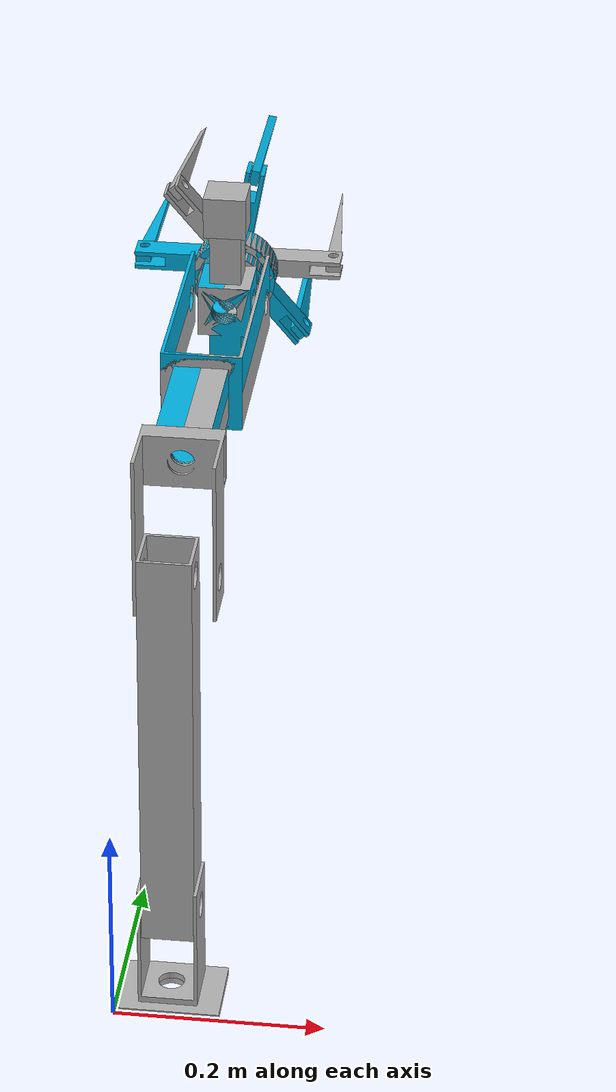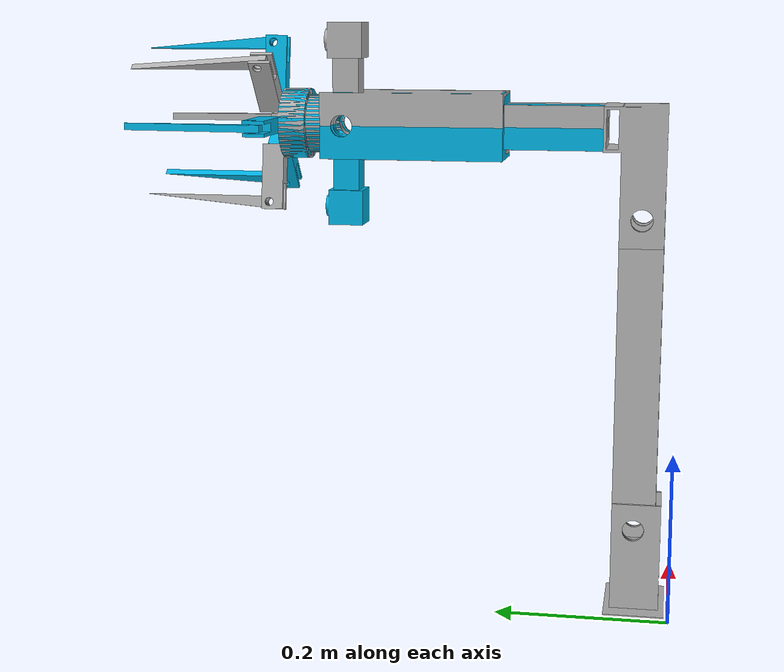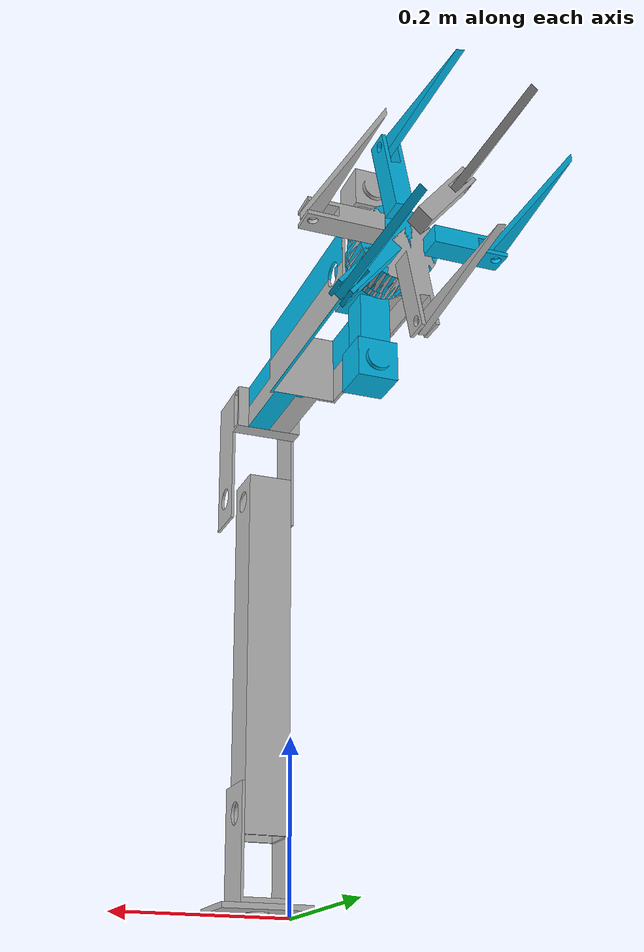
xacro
<?xml version="1.0" ?>
<robot name="URDF" xmlns:xacro="http://www.ros.org/wiki/xacro">

<xacro:include filename="$(find rover)/rover/simulation/urdfs/Arm_CIRC_2024/materials.xacro" />
<link name="base_link">
  <inertial>
    <origin xyz="0.049999999999908465 0.03732491617294113 0.003125" rpy="0 0 0"/>
    <mass value="0.3438852516301944"/>
    <inertia ixx="0.000173" iyy="0.000307" izz="0.000477" ixy="0.0" iyz="0.0" ixz="0.0"/>
  </inertial>
  <visual>
    <origin xyz="0 0 0" rpy="0 0 0"/>
    <geometry>
      <mesh filename="package://rover/rover/simulation/meshes/Arm_CIRC_2024/base_link.stl" scale="0.001 0.001 0.001"/>
    </geometry>
    <material name="silver"/>
  </visual>
  <collision>
    <origin xyz="0 0 0" rpy="0 0 0"/>
    <geometry>
      <mesh filename="package://rover/rover/simulation/meshes/Arm_CIRC_2024/base_link.stl" scale="0.001 0.001 0.001"/>
    </geometry>
  </collision>
</link>

<!-- Target Position Arm -->

<link name="link_2">
  <inertial>
    <origin xyz="0.025 -3.469446951953614e-17 0.18000000000000033" rpy="0 0 0"/>
    <mass value="1.8376728470103898"/>
    <inertia ixx="0.025547" iyy="0.025522" izz="0.001359" ixy="-0.0" iyz="0.0" ixz="0.0"/>
  </inertial>
  <visual>
    <origin xyz="-0.025 -0.043125 -0.10125" rpy="0 0 0"/>
    <geometry>
      <mesh filename="package://rover/rover/simulation/meshes/Arm_CIRC_2024/link_2_1.stl" scale="0.001 0.001 0.001"/>
    </geometry>
    <material name="silver"/>
  </visual>
  <collision>
    <origin xyz="-0.025 -0.043125 -0.10125" rpy="0 0 0"/>
    <geometry>
      <mesh filename="package://rover/rover/simulation/meshes/Arm_CIRC_2024/link_2_1.stl" scale="0.001 0.001 0.001"/>
    </geometry>
  </collision>
</link>

<link name="link_3">
  <inertial>
    <origin xyz="0.03437499999999987 -0.06837766852843247 0.012917814574353537" rpy="0 0 0"/>
    <mass value="0.5703271438853911"/>
    <inertia ixx="0.001379" iyy="0.000828" izz="0.001699" ixy="0.0" iyz="0.000233" ixz="0.0"/>
  </inertial>
  <visual>
    <origin xyz="-0.025 -0.043125 -0.46125" rpy="0 0 0"/>
    <geometry>
      <mesh filename="package://rover/rover/simulation/meshes/Arm_CIRC_2024/link_3_1.stl" scale="0.001 0.001 0.001"/>
    </geometry>
    <material name="silver"/>
  </visual>
  <collision>
    <origin xyz="-0.025 -0.043125 -0.46125" rpy="0 0 0"/>
    <geometry>
      <mesh filename="package://rover/rover/simulation/meshes/Arm_CIRC_2024/link_3_1.stl" scale="0.001 0.001 0.001"/>
    </geometry>
  </collision>
</link>

<link name="link_4">
  <inertial>
    <origin xyz="-5.140400912143073e-05 1.5265566588595902e-16 0.14186043457020492" rpy="0 0 0"/>
    <mass value="1.4205958730202999"/>
    <inertia ixx="0.012764" iyy="0.012172" izz="0.001822" ixy="0.0" iyz="0.0" ixz="-6e-06"/>
  </inertial>
  <visual>
    <origin xyz="-0.059375 0.056875 -0.50625" rpy="0 0 0"/>
    <geometry>
      <mesh filename="package://rover/rover/simulation/meshes/Arm_CIRC_2024/link_4_1.stl" scale="0.001 0.001 0.001"/>
    </geometry>
    <material name="silver"/>
  </visual>
  <collision>
    <origin xyz="-0.059375 0.056875 -0.50625" rpy="0 0 0"/>
    <geometry>
      <mesh filename="package://rover/rover/simulation/meshes/Arm_CIRC_2024/link_4_1.stl" scale="0.001 0.001 0.001"/>
    </geometry>
  </collision>
</link>

<link name="link_5">
  <inertial>
    <origin xyz="-0.024457508265359702 0.06037500000000042 -0.00023164099942307725" rpy="0 0 0"/>
    <mass value="1.03093485941646"/>
    <inertia ixx="0.000373" iyy="0.001033" izz="0.001033" ixy="-0.0" iyz="0.0" ixz="-8e-06"/>
  </inertial>
  <visual>
    <origin xyz="-0.0667 0.11725 -0.80125" rpy="0 0 0"/>
    <geometry>
      <mesh filename="package://rover/rover/simulation/meshes/Arm_CIRC_2024/link_5_1.stl" scale="0.001 0.001 0.001"/>
    </geometry>
    <material name="silver"/>
  </visual>
  <collision>
    <origin xyz="-0.0667 0.11725 -0.80125" rpy="0 0 0"/>
    <geometry>
      <mesh filename="package://rover/rover/simulation/meshes/Arm_CIRC_2024/link_5_1.stl" scale="0.001 0.001 0.001"/>
    </geometry>
  </collision>
</link>

<link name="link_1">
  <inertial>
    <origin xyz="-7.179673522372809e-14 -0.00017173384764001404 0.04577852526730277" rpy="0 0 0"/>
    <mass value="0.4382416946666404"/>
    <inertia ixx="0.000842" iyy="0.000973" izz="0.000383" ixy="0.0" iyz="4e-06" ixz="-0.0"/>
  </inertial>
  <visual>
    <origin xyz="-0.05 -0.04 -0.00625" rpy="0 0 0"/>
    <geometry>
      <mesh filename="package://rover/rover/simulation/meshes/Arm_CIRC_2024/link_1_1.stl" scale="0.001 0.001 0.001"/>
    </geometry>
    <material name="silver"/>
  </visual>
  <collision>
    <origin xyz="-0.05 -0.04 -0.00625" rpy="0 0 0"/>
    <geometry>
      <mesh filename="package://rover/rover/simulation/meshes/Arm_CIRC_2024/link_1_1.stl" scale="0.001 0.001 0.001"/>
    </geometry>
  </collision>
</link>

<link name="link_6">
  <inertial>
    <origin xyz="0.0010598645437465554 -0.0008893319477553327 0.0349620310530927" rpy="0 0 0"/>
    <mass value="2.291208404674366"/>
    <inertia ixx="0.002485" iyy="0.002561" izz="0.003312" ixy="0.000217" iyz="5.2e-05" ixz="-6.2e-05"/>
  </inertial>
  <visual>
    <origin xyz="-0.059375 0.056875 -0.82625" rpy="0 0 0"/>
    <geometry>
      <mesh filename="package://rover/rover/simulation/meshes/Arm_CIRC_2024/link_6_1.stl" scale="0.001 0.001 0.001"/>
    </geometry>
    <material name="silver"/>
  </visual>
  <collision>
    <origin xyz="-0.059375 0.056875 -0.82625" rpy="0 0 0"/>
    <geometry>
      <mesh filename="package://rover/rover/simulation/meshes/Arm_CIRC_2024/link_6_1.stl" scale="0.001 0.001 0.001"/>
    </geometry>
  </collision>
</link>

<link name="link_7">
  <inertial>
    <origin xyz="-0.0017868967775850429 -0.0050280961807210095 0.046368119669020325" rpy="0 0 0"/>
    <mass value="0.07042769953386392"/>
    <inertia ixx="9.8e-05" iyy="9.8e-05" izz="1e-06" ixy="0.0" iyz="3e-06" ixz="-4e-06"/>
  </inertial>
  <visual>
    <origin xyz="0.007887 -0.006092 -0.89025" rpy="0 0 0"/>
    <geometry>
      <mesh filename="package://rover/rover/simulation/meshes/Arm_CIRC_2024/link_7_1.stl" scale="0.001 0.001 0.001"/>
    </geometry>
    <material name="silver"/>
  </visual>
  <collision>
    <origin xyz="0.007887 -0.006092 -0.89025" rpy="0 0 0"/>
    <geometry>
      <mesh filename="package://rover/rover/simulation/meshes/Arm_CIRC_2024/link_7_1.stl" scale="0.001 0.001 0.001"/>
    </geometry>
  </collision>
</link>

<link name="link_8">
  <inertial>
    <origin xyz="-0.01999999999995168 4.163336342344337e-16 0.0008309682104638005" rpy="0 0 0"/>
    <mass value="0.5216667986958432"/>
    <inertia ixx="0.000144" iyy="0.000144" izz="0.000135" ixy="0.0" iyz="0.0" ixz="-0.0"/>
  </inertial>
  <visual>
    <origin xyz="0.015625 0.056875 -0.800574" rpy="0 0 0"/>
    <geometry>
      <mesh filename="package://rover/rover/simulation/meshes/Arm_CIRC_2024/link_8_1.stl" scale="0.001 0.001 0.001"/>
    </geometry>
    <material name="silver"/>
  </visual>
  <collision>
    <origin xyz="0.015625 0.056875 -0.800574" rpy="0 0 0"/>
    <geometry>
      <mesh filename="package://rover/rover/simulation/meshes/Arm_CIRC_2024/link_8_1.stl" scale="0.001 0.001 0.001"/>
    </geometry>
  </collision>
</link>

<link name="link_9">
  <inertial>
    <origin xyz="-0.002703449377635364 0.004600114186135838 0.04636811966902077" rpy="0 0 0"/>
    <mass value="0.07042769953386384"/>
    <inertia ixx="9.8e-05" iyy="9.8e-05" izz="1e-06" ixy="-0.0" iyz="1e-06" ixz="5e-06"/>
  </inertial>
  <visual>
    <origin xyz="-0.150846 0.045823 -0.89025" rpy="0 0 0"/>
    <geometry>
      <mesh filename="package://rover/rover/simulation/meshes/Arm_CIRC_2024/link_9_1.stl" scale="0.001 0.001 0.001"/>
    </geometry>
    <material name="silver"/>
  </visual>
  <collision>
    <origin xyz="-0.150846 0.045823 -0.89025" rpy="0 0 0"/>
    <geometry>
      <mesh filename="package://rover/rover/simulation/meshes/Arm_CIRC_2024/link_9_1.stl" scale="0.001 0.001 0.001"/>
    </geometry>
  </collision>
</link>

<link name="camera_link">
  <inertial>
    <origin xyz="0.005000000000008033 0.0018630668261348793 0.04636811966902077" rpy="0 0 0"/>
    <mass value="0.07042769953386384"/>
    <inertia ixx="9.8e-05" iyy="9.8e-05" izz="1e-06" ixy="-0.0" iyz="-5e-06" ixz="0.0"/>
  </inertial>
  <visual>
    <origin xyz="-0.054375 0.148875 -0.89025" rpy="0 0 0"/>
    <geometry>
      <mesh filename="package://rover/rover/simulation/meshes/Arm_CIRC_2024/camera_link_1.stl" scale="0.001 0.001 0.001"/>
    </geometry>
    <material name="silver"/>
  </visual>
  <collision>
    <origin xyz="-0.054375 0.148875 -0.89025" rpy="0 0 0"/>
    <geometry>
      <mesh filename="package://rover/rover/simulation/meshes/Arm_CIRC_2024/camera_link_1.stl" scale="0.001 0.001 0.001"/>
    </geometry>
  </collision>
</link>

<joint name="Joint_1" type="continuous">
  <origin xyz="0.05 0.04 0.00625" rpy="0 0 0"/>
  <parent link="base_link"/>
  <child link="link_1"/>
  <axis xyz="0.0 0.0 1.0"/>
</joint>

<joint name="Joint_2" type="continuous">
  <origin xyz="-0.025 0.003125 0.095" rpy="0 0 0"/>
  <parent link="link_1"/>
  <child link="link_2"/>
  <axis xyz="1.0 0.0 -0.0"/>
</joint>

<joint name="Joint_3" type="continuous">
  <origin xyz="0.0 0.0 0.36" rpy="-1.57 0 0"/>
  <parent link="link_2"/>
  <child link="link_3"/>
  <axis xyz="-1.0 -0.0 0.0"/>
</joint>

<joint name="Joint_4" type="continuous">
  <origin xyz="0.034375 -0.1 0.045" rpy="0 0 1.57"/>
  <parent link="link_3"/>
  <child link="link_4"/>
  <axis xyz="0.0 0.0 1.0"/>
</joint>

<joint name="Joint_5" type="continuous">
  <origin xyz="0.007325 -0.060375 0.295" rpy="0 0 0"/>
  <parent link="link_4"/>
  <child link="link_5"/>
  <axis xyz="-0.0 -1.0 -0.0"/>
</joint>

<joint name="Joint_6" type="continuous">
  <origin xyz="-0.007325 0.060375 0.025" rpy="0 0 0"/>
  <parent link="link_5"/>
  <child link="link_6"/>
  <axis xyz="-0.0 0.0 -1.0"/>
</joint>

<joint name="Joint_7" type="fixed">
  <origin xyz="-0.067262 0.062967 0.064" rpy="0 0 0"/>
  <parent link="link_6"/>
  <child link="link_7"/>
  <axis xyz="0.642788 0.766044 0.0"/>
</joint>

<joint name="Camera_Joint" type="fixed">
  <origin xyz="-0.082325 0.060375 -0.000676" rpy="0 0 0"/>
  <parent link="link_5"/>
  <child link="link_8"/>
</joint>

<joint name="Joint_8" type="fixed">
  <origin xyz="0.091471 0.011052 0.064" rpy="0 0 0"/>
  <parent link="link_6"/>
  <child link="link_9"/>
  <axis xyz="0.173648 -0.984808 -0.0"/>
</joint>

<joint name="Joint_9" type="fixed">
  <origin xyz="-0.005 -0.092 0.064" rpy="0 0 0"/>
  <parent link="link_6"/>
  <child link="camera_link"/>
  <axis xyz="-1.0 0.0 0.0"/>
</joint>

<!-- Real Arm -->

<link name="real_link_2">
  <inertial>
    <origin xyz="0.025 -3.469446951953614e-17 0.18000000000000033" rpy="0 0 0"/>
    <mass value="1.8376728470103898"/>
    <inertia ixx="0.025547" iyy="0.025522" izz="0.001359" ixy="-0.0" iyz="0.0" ixz="0.0"/>
  </inertial>
  <visual>
    <origin xyz="-0.025 -0.043125 -0.10125" rpy="0 0 0"/>
    <geometry>
      <mesh filename="package://rover/rover/simulation/meshes/Arm_CIRC_2024/link_2_1.stl" scale="0.001 0.001 0.001"/>
    </geometry>
    <material name="sky-blue"/>
  </visual>
  <collision>
    <origin xyz="-0.025 -0.043125 -0.10125" rpy="0 0 0"/>
    <geometry>
      <mesh filename="package://rover/rover/simulation/meshes/Arm_CIRC_2024/link_2_1.stl" scale="0.001 0.001 0.001"/>
    </geometry>
  </collision>
</link>

<link name="real_link_3">
  <inertial>
    <origin xyz="0.03437499999999987 -0.06837766852843247 0.012917814574353537" rpy="0 0 0"/>
    <mass value="0.5703271438853911"/>
    <inertia ixx="0.001379" iyy="0.000828" izz="0.001699" ixy="0.0" iyz="0.000233" ixz="0.0"/>
  </inertial>
  <visual>
    <origin xyz="-0.025 -0.043125 -0.46125" rpy="0 0 0"/>
    <geometry>
      <mesh filename="package://rover/rover/simulation/meshes/Arm_CIRC_2024/link_3_1.stl" scale="0.001 0.001 0.001"/>
    </geometry>
    <material name="sky-blue"/>
  </visual>
  <collision>
    <origin xyz="-0.025 -0.043125 -0.46125" rpy="0 0 0"/>
    <geometry>
      <mesh filename="package://rover/rover/simulation/meshes/Arm_CIRC_2024/link_3_1.stl" scale="0.001 0.001 0.001"/>
    </geometry>
  </collision>
</link>

<link name="real_link_4">
  <inertial>
    <origin xyz="-5.140400912143073e-05 1.5265566588595902e-16 0.14186043457020492" rpy="0 0 0"/>
    <mass value="1.4205958730202999"/>
    <inertia ixx="0.012764" iyy="0.012172" izz="0.001822" ixy="0.0" iyz="0.0" ixz="-6e-06"/>
  </inertial>
  <visual>
    <origin xyz="-0.059375 0.056875 -0.50625" rpy="0 0 0"/>
    <geometry>
      <mesh filename="package://rover/rover/simulation/meshes/Arm_CIRC_2024/link_4_1.stl" scale="0.001 0.001 0.001"/>
    </geometry>
    <material name="sky-blue"/>
  </visual>
  <collision>
    <origin xyz="-0.059375 0.056875 -0.50625" rpy="0 0 0"/>
    <geometry>
      <mesh filename="package://rover/rover/simulation/meshes/Arm_CIRC_2024/link_4_1.stl" scale="0.001 0.001 0.001"/>
    </geometry>
  </collision>
</link>

<link name="real_link_5">
  <inertial>
    <origin xyz="-0.024457508265359702 0.06037500000000042 -0.00023164099942307725" rpy="0 0 0"/>
    <mass value="1.03093485941646"/>
    <inertia ixx="0.000373" iyy="0.001033" izz="0.001033" ixy="-0.0" iyz="0.0" ixz="-8e-06"/>
  </inertial>
  <visual>
    <origin xyz="-0.0667 0.11725 -0.80125" rpy="0 0 0"/>
    <geometry>
      <mesh filename="package://rover/rover/simulation/meshes/Arm_CIRC_2024/link_5_1.stl" scale="0.001 0.001 0.001"/>
    </geometry>
    <material name="sky-blue"/>
  </visual>
  <collision>
    <origin xyz="-0.0667 0.11725 -0.80125" rpy="0 0 0"/>
    <geometry>
      <mesh filename="package://rover/rover/simulation/meshes/Arm_CIRC_2024/link_5_1.stl" scale="0.001 0.001 0.001"/>
    </geometry>
  </collision>
</link>

<link name="real_link_1">
  <inertial>
    <origin xyz="-7.179673522372809e-14 -0.00017173384764001404 0.04577852526730277" rpy="0 0 0"/>
    <mass value="0.4382416946666404"/>
    <inertia ixx="0.000842" iyy="0.000973" izz="0.000383" ixy="0.0" iyz="4e-06" ixz="-0.0"/>
  </inertial>
  <visual>
    <origin xyz="-0.05 -0.04 -0.00625" rpy="0 0 0"/>
    <geometry>
      <mesh filename="package://rover/rover/simulation/meshes/Arm_CIRC_2024/link_1_1.stl" scale="0.001 0.001 0.001"/>
    </geometry>
    <material name="sky-blue"/>
  </visual>
  <collision>
    <origin xyz="-0.05 -0.04 -0.00625" rpy="0 0 0"/>
    <geometry>
      <mesh filename="package://rover/rover/simulation/meshes/Arm_CIRC_2024/link_1_1.stl" scale="0.001 0.001 0.001"/>
    </geometry>
  </collision>
</link>

<link name="real_link_6">
  <inertial>
    <origin xyz="0.0010598645437465554 -0.0008893319477553327 0.0349620310530927" rpy="0 0 0"/>
    <mass value="2.291208404674366"/>
    <inertia ixx="0.002485" iyy="0.002561" izz="0.003312" ixy="0.000217" iyz="5.2e-05" ixz="-6.2e-05"/>
  </inertial>
  <visual>
    <origin xyz="-0.059375 0.056875 -0.82625" rpy="0 0 0"/>
    <geometry>
      <mesh filename="package://rover/rover/simulation/meshes/Arm_CIRC_2024/link_6_1.stl" scale="0.001 0.001 0.001"/>
    </geometry>
    <material name="sky-blue"/>
  </visual>
  <collision>
    <origin xyz="-0.059375 0.056875 -0.82625" rpy="0 0 0"/>
    <geometry>
      <mesh filename="package://rover/rover/simulation/meshes/Arm_CIRC_2024/link_6_1.stl" scale="0.001 0.001 0.001"/>
    </geometry>
  </collision>
</link>

<link name="real_link_7">
  <inertial>
    <origin xyz="-0.0017868967775850429 -0.0050280961807210095 0.046368119669020325" rpy="0 0 0"/>
    <mass value="0.07042769953386392"/>
    <inertia ixx="9.8e-05" iyy="9.8e-05" izz="1e-06" ixy="0.0" iyz="3e-06" ixz="-4e-06"/>
  </inertial>
  <visual>
    <origin xyz="0.007887 -0.006092 -0.89025" rpy="0 0 0"/>
    <geometry>
      <mesh filename="package://rover/rover/simulation/meshes/Arm_CIRC_2024/link_7_1.stl" scale="0.001 0.001 0.001"/>
    </geometry>
    <material name="sky-blue"/>
  </visual>
  <collision>
    <origin xyz="0.007887 -0.006092 -0.89025" rpy="0 0 0"/>
    <geometry>
      <mesh filename="package://rover/rover/simulation/meshes/Arm_CIRC_2024/link_7_1.stl" scale="0.001 0.001 0.001"/>
    </geometry>
  </collision>
</link>

<link name="real_link_8">
  <inertial>
    <origin xyz="-0.01999999999995168 4.163336342344337e-16 0.0008309682104638005" rpy="0 0 0"/>
    <mass value="0.5216667986958432"/>
    <inertia ixx="0.000144" iyy="0.000144" izz="0.000135" ixy="0.0" iyz="0.0" ixz="-0.0"/>
  </inertial>
  <visual>
    <origin xyz="0.015625 0.056875 -0.800574" rpy="0 0 0"/>
    <geometry>
      <mesh filename="package://rover/rover/simulation/meshes/Arm_CIRC_2024/link_8_1.stl" scale="0.001 0.001 0.001"/>
    </geometry>
    <material name="sky-blue"/>
  </visual>
  <collision>
    <origin xyz="0.015625 0.056875 -0.800574" rpy="0 0 0"/>
    <geometry>
      <mesh filename="package://rover/rover/simulation/meshes/Arm_CIRC_2024/link_8_1.stl" scale="0.001 0.001 0.001"/>
    </geometry>
  </collision>
</link>

<link name="real_link_9">
  <inertial>
    <origin xyz="-0.002703449377635364 0.004600114186135838 0.04636811966902077" rpy="0 0 0"/>
    <mass value="0.07042769953386384"/>
    <inertia ixx="9.8e-05" iyy="9.8e-05" izz="1e-06" ixy="-0.0" iyz="1e-06" ixz="5e-06"/>
  </inertial>
  <visual>
    <origin xyz="-0.150846 0.045823 -0.89025" rpy="0 0 0"/>
    <geometry>
      <mesh filename="package://rover/rover/simulation/meshes/Arm_CIRC_2024/link_9_1.stl" scale="0.001 0.001 0.001"/>
    </geometry>
    <material name="sky-blue"/>
  </visual>
  <collision>
    <origin xyz="-0.150846 0.045823 -0.89025" rpy="0 0 0"/>
    <geometry>
      <mesh filename="package://rover/rover/simulation/meshes/Arm_CIRC_2024/link_9_1.stl" scale="0.001 0.001 0.001"/>
    </geometry>
  </collision>
</link>

<link name="real_camera_link">
  <inertial>
    <origin xyz="0.005000000000008033 0.0018630668261348793 0.04636811966902077" rpy="0 0 0"/>
    <mass value="0.07042769953386384"/>
    <inertia ixx="9.8e-05" iyy="9.8e-05" izz="1e-06" ixy="-0.0" iyz="-5e-06" ixz="0.0"/>
  </inertial>
  <visual>
    <origin xyz="-0.054375 0.148875 -0.89025" rpy="0 0 0"/>
    <geometry>
      <mesh filename="package://rover/rover/simulation/meshes/Arm_CIRC_2024/camera_link_1.stl" scale="0.001 0.001 0.001"/>
    </geometry>
    <material name="sky-blue"/>
  </visual>
  <collision>
    <origin xyz="-0.054375 0.148875 -0.89025" rpy="0 0 0"/>
    <geometry>
      <mesh filename="package://rover/rover/simulation/meshes/Arm_CIRC_2024/camera_link_1.stl" scale="0.001 0.001 0.001"/>
    </geometry>
  </collision>
</link>

<joint name="Real_Joint_1" type="continuous">
  <origin xyz="0.05 0.04 0.00625" rpy="0 0 0"/>
  <parent link="base_link"/>
  <child link="real_link_1"/>
  <axis xyz="0.0 0.0 1.0"/>
</joint>

<joint name="Real_Joint_2" type="continuous">
  <origin xyz="-0.025 0.003125 0.095" rpy="0 0 0"/>
  <parent link="real_link_1"/>
  <child link="real_link_2"/>
  <axis xyz="1.0 0.0 -0.0"/>
</joint>

<joint name="Real_Joint_3" type="continuous">
  <origin xyz="0.0 0.0 0.36" rpy="-1.57 0 0"/>
  <parent link="real_link_2"/>
  <child link="real_link_3"/>
  <axis xyz="-1.0 -0.0 0.0"/>
</joint>

<joint name="Real_Joint_4" type="continuous">
  <origin xyz="0.034375 -0.1 0.045" rpy="0 0 -1.57"/>
  <parent link="real_link_3"/>
  <child link="real_link_4"/>
  <axis xyz="0.0 0.0 1.0"/>
</joint>

<joint name="Real_Joint_5" type="continuous">
  <origin xyz="0.007325 -0.060375 0.295" rpy="0 0 0"/>
  <parent link="real_link_4"/>
  <child link="real_link_5"/>
  <axis xyz="-0.0 1.0 -0.0"/>
</joint>

<joint name="Real_Joint_6" type="continuous">
  <origin xyz="-0.007325 0.060375 0.025" rpy="0 0 0"/>
  <parent link="real_link_5"/>
  <child link="real_link_6"/>
  <axis xyz="-0.0 0.0 1.0"/>
</joint>

<joint name="Real_Joint_7" type="fixed">
  <origin xyz="-0.067262 0.062967 0.064" rpy="0 0 0"/>
  <parent link="real_link_6"/>
  <child link="real_link_7"/>
  <axis xyz="0.642788 0.766044 0.0"/>
</joint>

<joint name="Real_Camera_Joint" type="fixed">
  <origin xyz="-0.082325 0.060375 -0.000676" rpy="0 0 0"/>
  <parent link="real_link_5"/>
  <child link="real_link_8"/>
</joint>

<joint name="Real_Joint_8" type="fixed">
  <origin xyz="0.091471 0.011052 0.064" rpy="0 0 0"/>
  <parent link="real_link_6"/>
  <child link="real_link_9"/>
  <axis xyz="0.173648 -0.984808 -0.0"/>
</joint>

<joint name="Real_Joint_9" type="fixed">
  <origin xyz="-0.005 -0.092 0.064" rpy="0 0 0"/>
  <parent link="real_link_6"/>
  <child link="real_camera_link"/>
  <axis xyz="-1.0 0.0 0.0"/>
</joint>

</robot>

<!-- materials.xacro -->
<robot name="URDF" xmlns:xacro="http://www.ros.org/wiki/xacro" >

<material name="silver">
  <color rgba="0.700 0.700 0.700 1.000"/>
</material>

<material name="sky-blue">
  <color rgba="0 0.700 0.886 1.00"/>
</material>

</robot>
